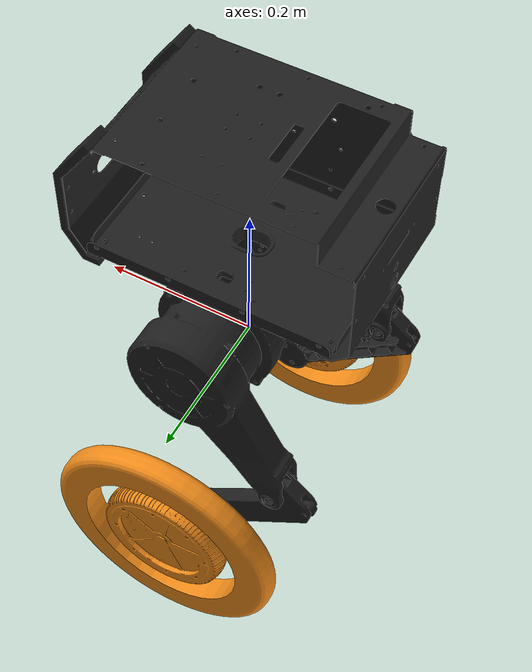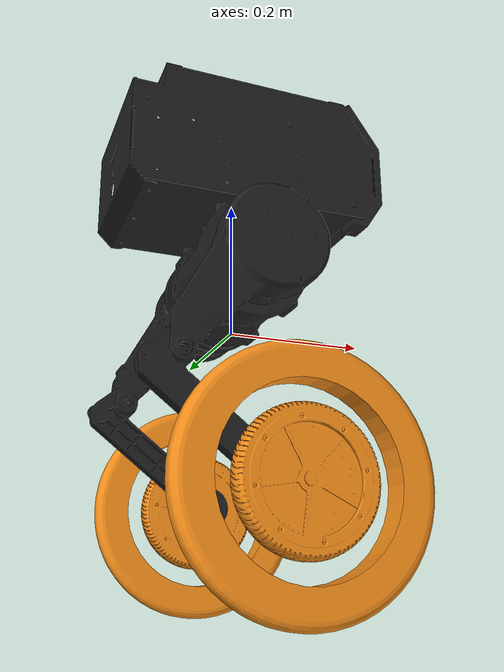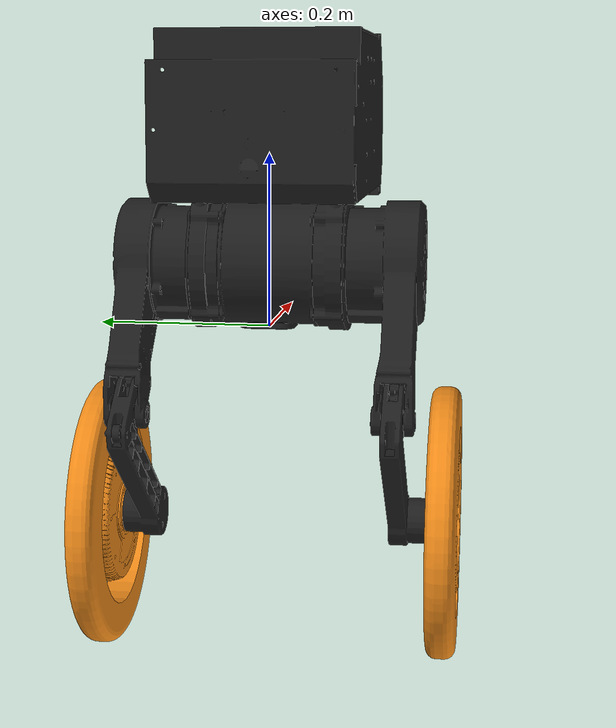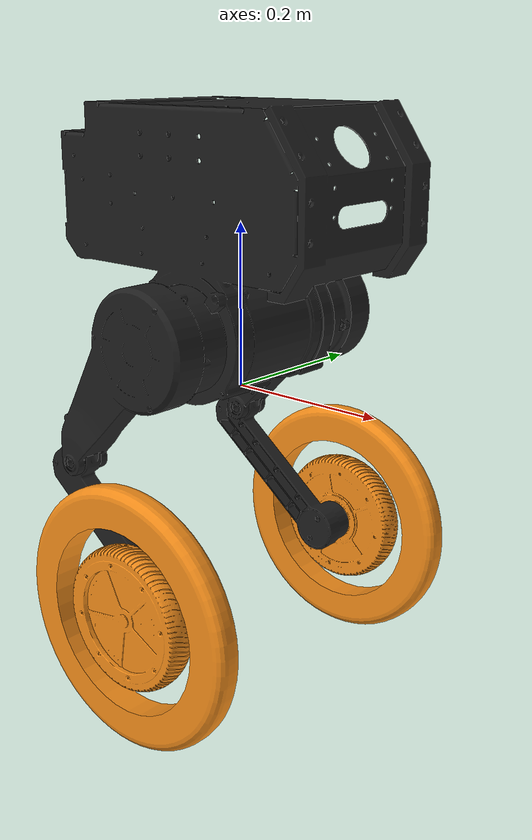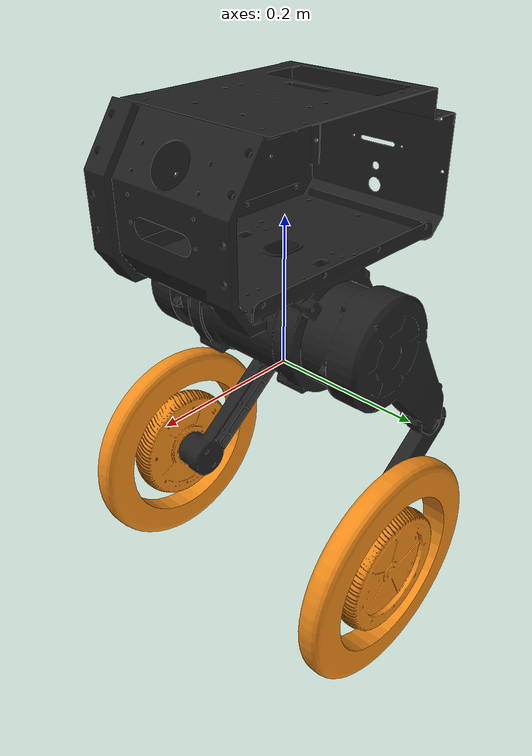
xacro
<?xml version="1.0"?>
<robot xmlns:xacro="http://wiki.ros.org/xacro" name="display">
  <xacro:arg name="use_tower" default="false" />
  <xacro:include filename="$(find tita_description)/diablo_pluspro_stand/xacro/materials.xacro"/>
  <xacro:include filename="$(find tita_description)/diablo_pluspro_stand/xacro/description.xacro" />

  <xacro:description />

</robot>

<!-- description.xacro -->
<robot xmlns:xacro="http://www.ros.org/wiki/xacro" name="diablo_pluspro">
  <xacro:macro name="description">
    <link name="base_link">
      <inertial>
        <origin xyz="0.017899 -0.019179 0.16091" rpy="0 0 0" />
        <mass value="8.53" />
        <inertia ixx="0.8371974" ixy="-0.06254957" ixz="-0.01618499" iyy="0.8708397" iyz="0.003006719" izz="0.3425067" />
      </inertial>
      <visual>
        <origin xyz="0 0 0" rpy="0 0 0" />
        <geometry>
          <mesh filename="file://$(find tita_description)/diablo_pluspro_stand/meshes/base_link.STL" />
        </geometry>
        <material name="black"/>
      </visual>
      <collision>
        <origin xyz="0 0 0" rpy="0 0 0" />
        <geometry>
          <mesh filename="file://$(find tita_description)/diablo_pluspro_stand/meshes/base_link.STL" />
        </geometry>
      </collision>
    </link>

    <link name="imu_link">
      <inertial>
        <mass value="0.001"/>
        <origin rpy="0 0 0" xyz="0 0 0"/>
        <inertia ixx="0.0001" ixy="0" ixz="0" iyy="0.0001" iyz="0" izz="0.0001"/>
      </inertial>
      <visual>
        <origin rpy="0 0 0" xyz="0 0 0"/>
        <geometry>
          <box size="0.001 0.001 0.001"/>
        </geometry>
        <material name="red"/>
      </visual>
      <collision>
        <origin rpy="0 0 0" xyz="0 0 0"/>
        <geometry>
          <box size=".001 .001 .001"/>
        </geometry>
      </collision>
    </link>
    <joint name="imu_joint" type="fixed">
      <parent link="base_link"/>
      <child link="imu_link"/>
      <origin rpy="0 0 0" xyz="0 0 0"/>
    </joint>

    <link name="left_hip_link">
      <inertial>
        <origin xyz="-0.028034 0.083955 -0.03225" rpy="0 0 0" />
        <mass value="5.1" />
        <inertia ixx="0.01137421" ixy="0.00070511460" ixz="0.00124554" iyy="0.0082006541" iyz="0.0029798900" izz="0.0060506903" />
      </inertial>
      <visual>
        <origin xyz="0 0 0" rpy="0 0 0" />
        <geometry>
          <mesh filename="file://$(find tita_description)/diablo_pluspro_stand/meshes/left_hip_link.STL" />
        </geometry>
        <material name="black"/>
      </visual>
      <collision>
        <origin xyz="0 0 0" rpy="0 0 0" />
        <geometry>
          <mesh filename="file://$(find tita_description)/diablo_pluspro_stand/meshes/left_hip_link.STL" />
        </geometry>
      </collision>
    </link>
    <joint name="left_hip_joint" type="revolute">
      <origin xyz="0 0.0428 0.075997" rpy="0 0 0" />
      <parent link="base_link" />
      <child link="left_hip_link" />
      <axis xyz="0 1 0" />
      <limit lower="-1.57" upper="1.57" effort="80" velocity="15" />
    </joint>

    <link name="left_knee_link">
      <inertial>
        <origin xyz="0.058585 -0.0059746 -0.081982" rpy="0 0 0" />
        <mass value="2.17" />
        <inertia ixx="0.0044665319" ixy="1.2345077E-05" ixz="-0.00023975799" iyy="0.0046256777" iyz="-0.00022848392" izz="0.0002702575" />
      </inertial>
      <visual>
        <origin xyz="0 0 0" rpy="0 0 0" />
        <geometry>
          <mesh filename="file://$(find tita_description)/diablo_pluspro_stand/meshes/left_knee_link.STL" />
        </geometry>
        <material name="black"/>
      </visual>
      <collision>
        <origin xyz="0 0 0" rpy="0 0 0" />
        <geometry>
          <mesh filename="file://$(find tita_description)/diablo_pluspro_stand/meshes/left_knee_link.STL" />
        </geometry>
      </collision>
    </link>
    <joint name="left_knee_joint" type="revolute">
      <origin xyz="-0.12022 0.11148 -0.15983" rpy="0 0 0" />
      <parent link="left_hip_link" />
      <child link="left_knee_link" />
      <axis xyz="0 1 0" />
      <limit lower="-1.57" upper="0" effort="80" velocity="15" />
    </joint>

    <link name="left_wheel_link">
      <inertial>
        <origin xyz="-2.0554E-06 0.028353 3.331E-07" rpy="0 0 0" />
        <mass value="2" />
        <inertia ixx="0.013847" ixy="-1.0976E-07" ixz="-3.0619E-09" iyy="0.027351" iyz="8.9065E-09" izz="0.013847" />
      </inertial>
      <visual>
        <origin xyz="0 0 0" rpy="0 0 0" />
        <geometry>
          <mesh filename="file://$(find tita_description)/diablo_pluspro_stand/meshes/left_wheel_link.STL" />
        </geometry>
        <material name="orange"/>
      </visual>
      <collision>
        <origin xyz="0 0.02 0" rpy="1.5707963 0 0" />
        <geometry>
          <cylinder radius="0.16" length="0.035"/>
        </geometry>
      </collision>
    </link>
    <joint name="left_wheel_joint" type="revolute">
      <origin xyz="0.13397 0.01346 -0.1485" rpy="0 0 0" />
      <parent link="left_knee_link" />
      <child link="left_wheel_link" />
      <axis xyz="0 1 0" />
      <limit lower="-6.283185e4" upper="6.283185e4" effort="20" velocity="30" />
    </joint>

    <link name="right_hip_link">
      <inertial>
        <origin xyz="-0.028034 -0.083955 -0.032251" rpy="0 0 0" />
        <mass value="5.1" />
        <inertia ixx="0.01137421" ixy="0.00070511460" ixz="0.00124554" iyy="0.0082006541" iyz="0.0029798900" izz="0.0060506903" />
      </inertial>
      <visual>
        <origin xyz="0 0 0" rpy="0 0 0" />
        <geometry>
          <mesh filename="file://$(find tita_description)/diablo_pluspro_stand/meshes/right_hip_link.STL" />
        </geometry>
        <material name="black"/>
      </visual>
      <collision>
        <origin xyz="0 0 0" rpy="0 0 0" />
        <geometry>
          <mesh filename="file://$(find tita_description)/diablo_pluspro_stand/meshes/right_hip_link.STL" />
        </geometry>
      </collision>
    </link>
    <joint name="right_hip_joint" type="revolute">
      <origin xyz="0 -0.0528 0.075997" rpy="0 0 0" />
      <parent link="base_link" />
      <child link="right_hip_link" />
      <axis xyz="0 1 0" />
      <limit lower="-1.57" upper="1.57" effort="80" velocity="15" />
    </joint>

    <link name="right_knee_link">
      <inertial>
        <origin xyz="0.060903 -0.0019333 -0.083431" rpy="0 0 0" />
        <mass value="2.17" />
        <inertia ixx="0.0044665319" ixy="1.2345077E-05" ixz="-0.00023975799" iyy="0.0046256777" iyz="-0.00022848392" izz="0.0002702575" />
      </inertial>
      <visual>
        <origin xyz="0 0 0" rpy="0 0 0" />
        <geometry>
          <mesh filename="file://$(find tita_description)/diablo_pluspro_stand/meshes/right_knee_link.STL" />
        </geometry>
        <material name="black"/>
      </visual>
      <collision>
        <origin xyz="0 0 0" rpy="0 0 0" />
        <geometry>
          <mesh filename="file://$(find tita_description)/diablo_pluspro_stand/meshes/right_knee_link.STL" />
        </geometry>
      </collision>
    </link>
    <joint name="right_knee_joint" type="revolute">
      <origin xyz="-0.12022 -0.10364 -0.15983" rpy="0 0 0" />
      <parent link="right_hip_link" />
      <child link="right_knee_link" />
      <axis xyz="0 1 0" />
      <limit lower="-1.57" upper="0" effort="80" velocity="15" />
    </joint>

    <link name="right_wheel_link">
      <inertial>
        <origin xyz="-2.0311E-06 -0.019153 -4.553E-07" rpy="0 0 0" />
        <mass value="2" />
        <inertia ixx="0.013847" ixy="1.0863E-07" ixz="3.5235E-09" iyy="0.027351" iyz="1.5231E-08" izz="0.013847" />
      </inertial>
      <visual>
        <origin xyz="0 0 0" rpy="0 0 0" />
        <geometry>
          <mesh filename="file://$(find tita_description)/diablo_pluspro_stand/meshes/right_wheel_link.STL" />
        </geometry>
        <material name="orange"/>
      </visual>
      <collision>
        <origin xyz="0 -0.02 0" rpy="1.5707963 0 0" />
        <geometry>
          <cylinder radius="0.16" length="0.035"/>
        </geometry>
      </collision>
    </link>
    <joint name="right_wheel_joint" type="revolute">
      <origin xyz="0.13397 -0.03046 -0.1485" rpy="0 0 0" />
      <parent link="right_knee_link" />
      <child link="right_wheel_link" />
      <axis xyz="0 1 0" />
      <limit lower="-6.283185e4" upper="6.283185e4" effort="20" velocity="30" />
    </joint>
  </xacro:macro>
</robot>
